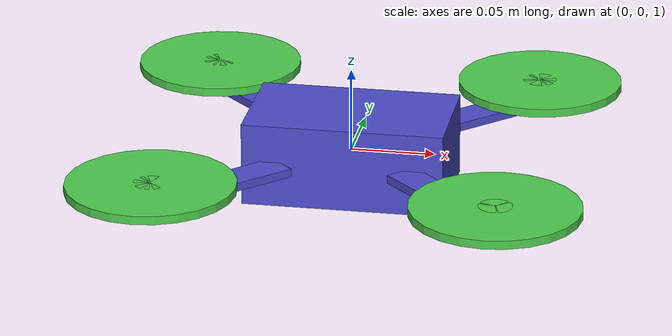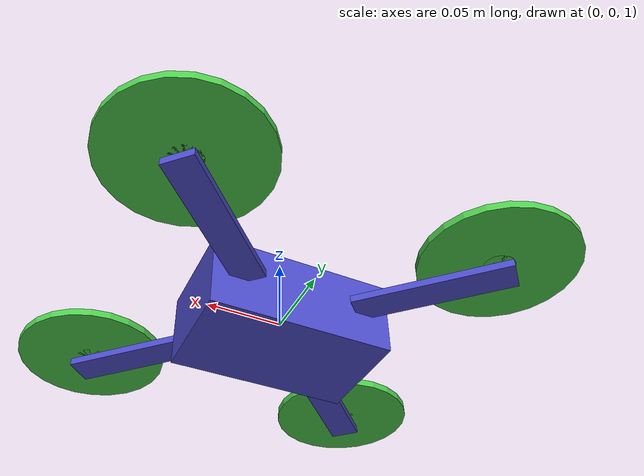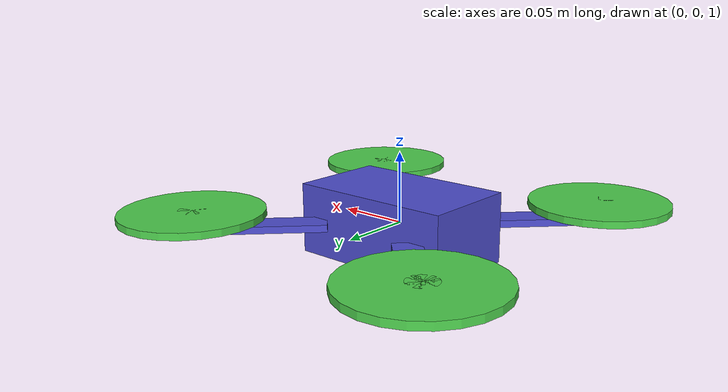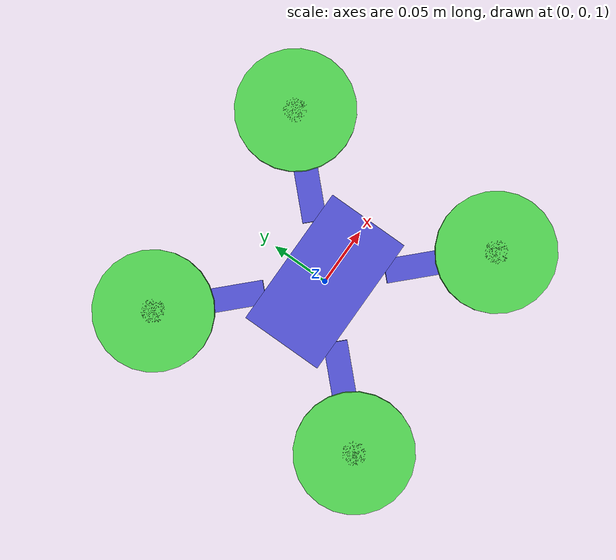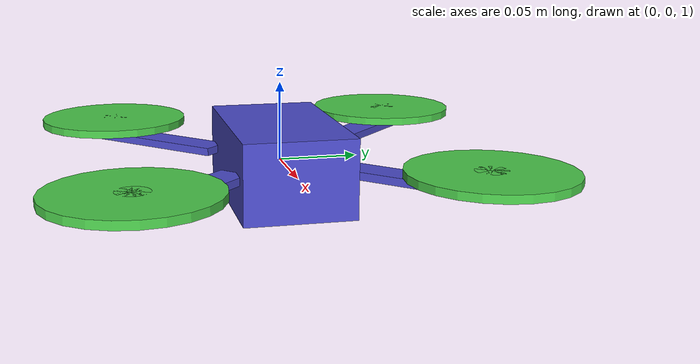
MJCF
<mujoco model="quadrotor">
	<compiler inertiafromgeom="true" coordinate="local"/>
	<option	timestep="0.01" gravity="0 0 -9.81" density="1" viscosity="1e-5" integrator="RK4"/>
	<asset>
        <texture builtin="gradient" type="skybox" height="100" width="100" rgb1="1 1 1" rgb2="0 0 0"/>
        <texture name="texgeom" builtin="flat" height="1278" mark="cross" markrgb="1 1 1" random="0.01" rgb1="0.8 0.6 0.4" rgb2="0.8 0.6 0.4" type="cube" width="127"/>
        <texture name="texplane" builtin="checker" height="100" width="100" rgb1="0 0 0" rgb2="0.8 0.8 0.8" type="2d"/>
        <material name="MatPlane" reflectance="0.5" shininess="1" specular="1" texrepeat="60 60" texture="texplane"/>
        <material name="geom" texture="texgeom" texuniform="true"/>
    </asset>
	<worldbody>
        <light cutoff="100" diffuse="1 1 1" dir="-0 0 -1.3" directional="true" exponent="1" pos="0 0 1.3" specular=".1 .1 .1"/>
        <geom conaffinity="1" condim="3" material="MatPlane" name="floor" pos="0 0 0" rgba="0.4 0.3 0.3 1" size="5 5 0.2" type="plane"/>
		<body name="quadrotor" pos="0 0 1" >
            <!-- core body with body and 4 arms -->
			<geom name="core" type="box" pos="0 0 0" quat = "1. 0. 0. 0" size="0.06 0.035 0.025"  rgba="0.3 0.3 0.8 1" mass = ".1"/>
			<geom name="a00" type="box" pos=".071 0.071 0.0" size="0.05 0.01 0.0025"  quat = ".924 0.0 0.0 0.383" rgba="0.3 0.3 0.8 1" mass = ".025"/>
			<geom name="a10" type="box" pos=".071 -0.071 0.0" size="0.05 0.01 0.0025"  quat = ".383 0.0 0.0 0.924" rgba="0.3 0.3 0.8 1" mass = ".025"/>
			<geom name="a20" type="box" pos="-0.071 -0.071 0.0" size="0.05 0.01 0.0025"  quat = "-.383 0.0 0.0 0.924" rgba="0.3 0.3 0.8 1" mass = ".025"/>
			<geom name="a30" type="box" pos="-.071 0.071 0.0" size="0.05 0.01 0.0025"  quat = ".924 0.0 0.0 -0.383" rgba="0.3 0.3 0.8 1" mass = ".025"/>
			<joint name="root"   type="free" damping="0" armature="0" pos="0 0 0" />
			<!-- the four motors -->
            <site name="motor0" type="cylinder" pos=" 0.1  0.1 0.01"  size="0.01 0.0025"  quat = "1.0 0.0 0.0 0." rgba="0.3 0.8 0.3 1"/>
            <site name="motor1" type="cylinder" pos=" 0.1 -0.1 0.01"  size="0.01 0.0025"  quat = "1.0 0.0 0.0 0." rgba="0.3 0.8 0.3 1"/>
            <site name="motor2" type="cylinder" pos="-0.1 -0.1 0.01"  size="0.01 0.0025"  quat = "1.0 0.0 0.0 0." rgba="0.3 0.8 0.3 1"/>
            <site name="motor3" type="cylinder" pos="-0.1  0.1 0.01"  size="0.01 0.0025"  quat = "1.0 0.0 0.0 0." rgba="0.3 0.8 0.3 1"/>
			<!-- thrusters for collison check -->
            <geom name="thruster0" type="cylinder" pos=" 0.1  0.1  0.01" size="0.05 0.0025"  quat = "1.0 0.0 0.0 0." rgba="0.3 0.8 0.3 1" mass = ".025"/>
            <geom name="thruster1" type="cylinder" pos=" 0.1 -0.1  0.01" size="0.05 0.0025"  quat = "1.0 0.0 0.0 0." rgba="0.3 0.8 0.3 1" mass = ".025"/>
            <geom name="thruster2" type="cylinder" pos="-0.1 -0.1  0.01" size="0.05 0.0025"  quat = "1.0 0.0 0.0 0." rgba="0.3 0.8 0.3 1" mass = ".025"/>
            <geom name="thruster3" type="cylinder" pos="-0.1  0.1  0.01" size="0.05 0.0025"  quat = "1.0 0.0 0.0 0." rgba="0.3 0.8 0.3 1" mass = ".025"/>
		</body>
	</worldbody>
    <actuator>
        <motor ctrllimited="true" ctrlrange="0.0 1.0" gear="0  0. 1. 0. 0. -0.1" site="motor0"/>
        <motor ctrllimited="true" ctrlrange="0.0 1.0" gear="0  0. 1. 0. 0.  0.1" site="motor1"/>
        <motor ctrllimited="true" ctrlrange="0.0 1.0" gear="0  0. 1. 0. 0. -0.1" site="motor2"/>
        <motor ctrllimited="true" ctrlrange="0.0 1.0" gear="0  0. 1. 0. 0.  0.1" site="motor3"/>
	</actuator>
</mujoco>
